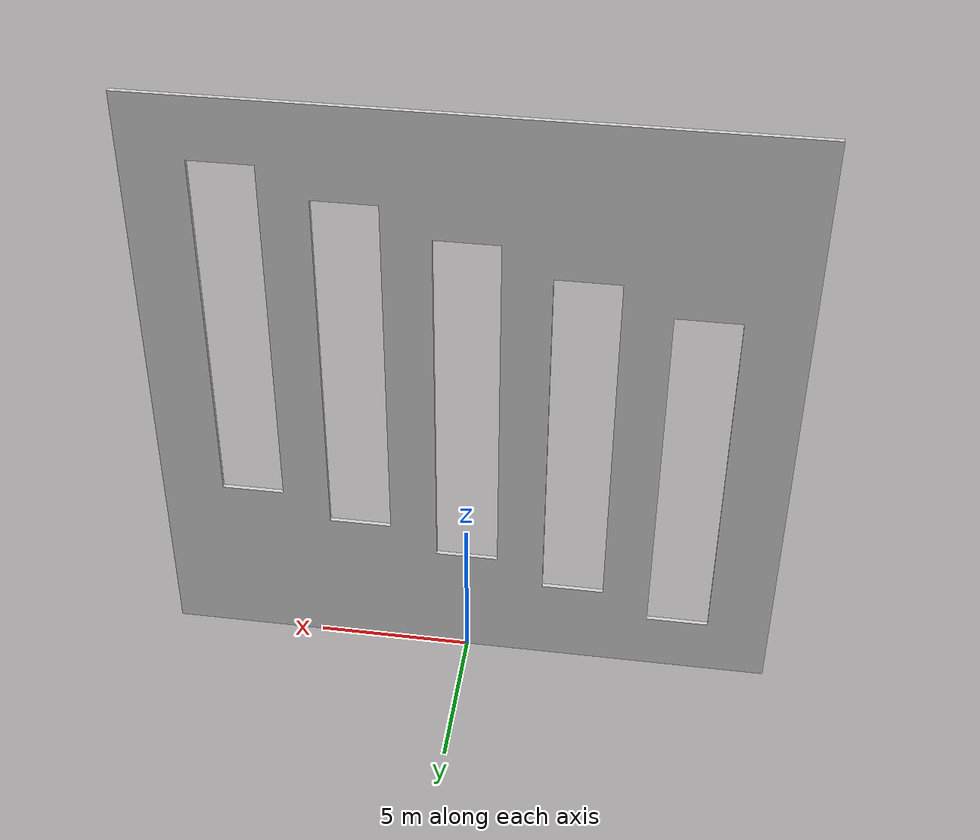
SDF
<?xml version="1.0" ?>
<sdf version="1.5">
  <model name="partition_13">
    <static>true</static>
    <link name="link">
    <pose>-10 0 0 1.57 0 0</pose>
      <collision name="collision">
        <geometry>
          <mesh>
            <scale>0.001 0.001 0.001</scale>
            <uri>model://partition_13/model.stl</uri>
        </mesh>
        </geometry>
      </collision>
      <visual name="visual">
        <cast_shadows>true</cast_shadows>
        <geometry>
            <mesh>
                <scale>0.001 0.001 0.001</scale>
                <uri>model://partition_13/model.stl</uri>
            </mesh>
        </geometry>
        <material>
              <ambient>0.8 0.8 0.8 1</ambient>
              <diffuse>0.8 0.8 0.8 1</diffuse>
              <specular>0.1 0.1 0.1 0</specular>
              <emissive>0.2 0.1 0.1 1</emissive>
            </material>
    </visual>
    </link>
  </model>
</sdf>
